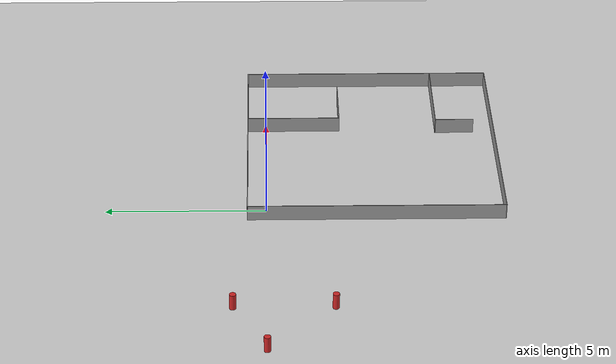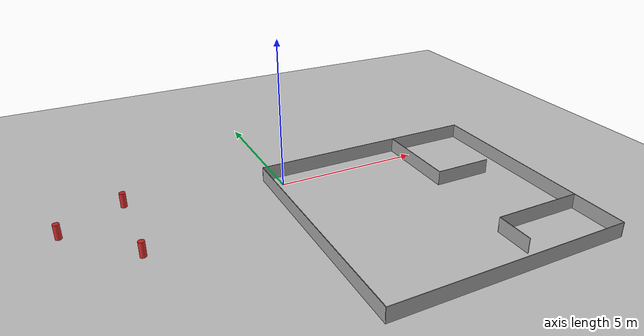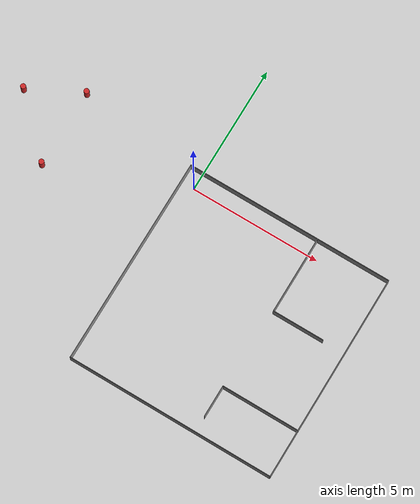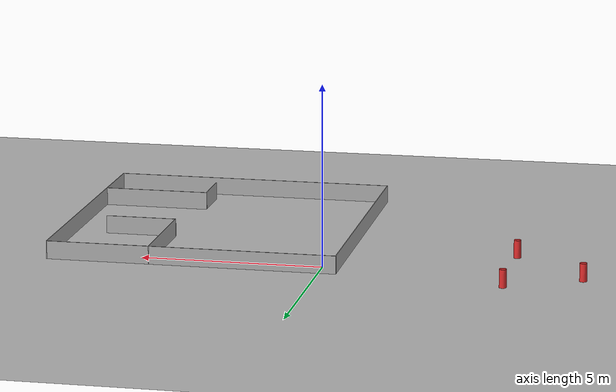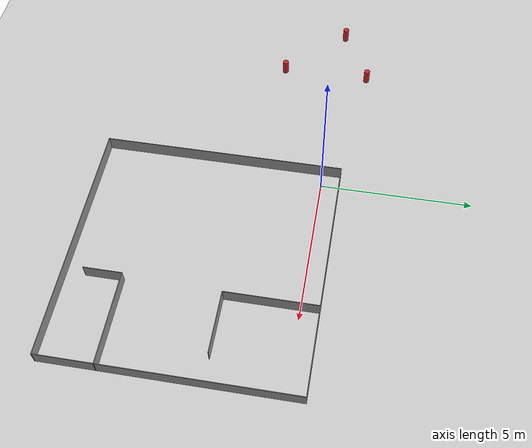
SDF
<sdf version="1.7">
 <world name="default">
  <model name="cylinder_obstacle_3">
   <pose>-7 0 0.25 0 0 0</pose>
   <link name="link">
    <collision name="collision">
     <geometry><cylinder><radius>0.1</radius><length>0.5</length></cylinder></geometry>
    </collision>
    <visual name="visual">
     <geometry><cylinder><radius>0.1</radius><length>0.5</length></cylinder></geometry>
     <material>
      <script><uri>file://media/materials/scripts/gazebo.material</uri><name>Gazebo/Red</name></script>
     </material>
    </visual>
   </link>
   <static>true</static>
  </model>
  <model name="cylinder_obstacle_4">
   <pose>-5 -2 0.25 0 0 0</pose>
   <link name="link">
    <collision name="collision">
     <geometry><cylinder><radius>0.1</radius><length>0.5</length></cylinder></geometry>
    </collision>
    <visual name="visual">
     <geometry><cylinder><radius>0.1</radius><length>0.5</length></cylinder></geometry>
     <material>
      <script><uri>file://media/materials/scripts/gazebo.material</uri><name>Gazebo/Red</name></script>
     </material>
    </visual>
   </link>
   <static>true</static>
  </model>
  <model name="cylinder_obstacle_5">
   <pose>-5 1 0.25 0 0 0</pose>
   <link name="link">
    <collision name="collision">
     <geometry><cylinder><radius>0.1</radius><length>0.5</length></cylinder></geometry>
    </collision>
    <visual name="visual">
     <geometry><cylinder><radius>0.1</radius><length>0.5</length></cylinder></geometry>
     <material>
      <script><uri>file://media/materials/scripts/gazebo.material</uri><name>Gazebo/Red</name></script>
     </material>
    </visual>
   </link>
   <static>true</static>
  </model>
  <light name="sun" type="directional">
   <pose>0 0 10 0 -0 0</pose>
   <diffuse>0.8 0.8 0.8 1</diffuse>
   <specular>0.2 0.2 0.2 1</specular>
   <attenuation>
    <range>1000</range>
    <constant>0.9</constant>
    <linear>0.01</linear>
    <quadratic>0.001</quadratic>
   </attenuation>
   <direction>-0.5 0.1 -0.9</direction>
   <spot><inner_angle>0</inner_angle><outer_angle>0</outer_angle><falloff>0</falloff></spot>
  </light>
  <model name="ground_plane">
   <static>1</static>
   <link name="link">
    <collision name="collision">
     <geometry><plane><normal>0 0 1</normal><size>100 100</size></plane></geometry>
     <surface>
      <contact><collide_bitmask>65535</collide_bitmask></contact>
      <friction><ode><mu>100</mu><mu2>50</mu2></ode></friction>
     </surface>
    </collision>
    <visual name="visual">
     <cast_shadows>0</cast_shadows>
     <geometry><plane><normal>0 0 1</normal><size>100 100</size></plane></geometry>
     <material>
      <script><uri>file://media/materials/scripts/gazebo.material</uri><name>Gazebo/Grey</name></script>
     </material>
    </visual>
   </link>
  </model>
  <gravity>0 0 -9.8</gravity>
  <magnetic_field>6e-06 2.3e-05 -4.2e-05</magnetic_field>
  <atmosphere type="adiabatic"/>
  <physics type="ode">
   <max_step_size>0.001</max_step_size>
   <real_time_factor>1</real_time_factor>
   <real_time_update_rate>1000</real_time_update_rate>
  </physics>
  <scene><ambient>0.4 0.4 0.4 1</ambient><background>0.7 0.7 0.7 1</background><shadows>1</shadows></scene>
  <audio><device>default</device></audio>
  <spherical_coordinates>
   <surface_model>EARTH_WGS84</surface_model>
   <latitude_deg>0</latitude_deg>
   <longitude_deg>0</longitude_deg>
   <elevation>0</elevation>
   <heading_deg>0</heading_deg>
  </spherical_coordinates>
  <model name="arena">
   <pose>3.51688 -4.07862 0 0 0 -1.5708</pose>
   <link name="Wall_0">
    <collision name="Wall_0_Collision">
     <geometry><box><size>8 0.02 0.5</size></box></geometry>
     <pose>0 0 0.25 0 -0 0</pose>
    </collision>
    <visual name="Wall_0_Visual">
     <pose>0 0 0.25 0 -0 0</pose>
     <geometry><box><size>8 0.02 0.5</size></box></geometry>
     <material>
      <script><uri>file://media/materials/scripts/gazebo.material</uri><name>Gazebo/Grey</name></script>
      <ambient>1 1 1 1</ambient>
     </material>
     <meta><layer>0</layer></meta>
    </visual>
    <pose>-4.675 -0 0 0 -0 -1.5708</pose>
   </link>
   <link name="Wall_10">
    <collision name="Wall_10_Collision">
     <geometry><box><size>3 0.02 0.5</size></box></geometry>
     <pose>0 0 0.25 0 -0 0</pose>
    </collision>
    <visual name="Wall_10_Visual">
     <pose>0 0 0.25 0 -0 0</pose>
     <geometry><box><size>3 0.02 0.5</size></box></geometry>
     <material>
      <script><uri>file://media/materials/scripts/gazebo.material</uri><name>Gazebo/Grey</name></script>
      <ambient>1 1 1 1</ambient>
     </material>
     <meta><layer>0</layer></meta>
    </visual>
    <pose>-3.185 1.14 0 0 -0 0</pose>
   </link>
   <link name="Wall_12">
    <collision name="Wall_12_Collision">
     <geometry><box><size>2 0.02 0.5</size></box></geometry>
     <pose>0 0 0.25 0 -0 0</pose>
    </collision>
    <visual name="Wall_12_Visual">
     <pose>0 0 0.25 0 -0 0</pose>
     <geometry><box><size>2 0.02 0.5</size></box></geometry>
     <material>
      <script><uri>file://media/materials/scripts/gazebo.material</uri><name>Gazebo/Grey</name></script>
      <ambient>1 1 1 1</ambient>
     </material>
     <meta><layer>0</layer></meta>
    </visual>
    <pose>-1.695 2.13 0 0 -0 1.5708</pose>
   </link>
   <link name="Wall_15">
    <collision name="Wall_15_Collision">
     <geometry><box><size>3 0.02 0.5</size></box></geometry>
     <pose>0 0 0.25 0 -0 0</pose>
    </collision>
    <visual name="Wall_15_Visual">
     <pose>0 0 0.25 0 -0 0</pose>
     <geometry><box><size>3 0.02 0.5</size></box></geometry>
     <material>
      <script><uri>file://media/materials/scripts/gazebo.material</uri><name>Gazebo/Grey</name></script>
      <ambient>1 1 1 1</ambient>
     </material>
     <meta><layer>0</layer></meta>
    </visual>
    <pose>1.455 2.5 0 0 -0 -1.5708</pose>
   </link>
   <link name="Wall_17">
    <collision name="Wall_17_Collision">
     <geometry><box><size>1.25 0.02 0.5</size></box></geometry>
     <pose>0 0 0.25 0 -0 0</pose>
    </collision>
    <visual name="Wall_17_Visual">
     <pose>0 0 0.25 0 -0 0</pose>
     <geometry><box><size>1.25 0.02 0.5</size></box></geometry>
     <material>
      <script><uri>file://media/materials/scripts/gazebo.material</uri><name>Gazebo/Grey</name></script>
      <ambient>1 1 1 1</ambient>
     </material>
     <meta><layer>0</layer></meta>
    </visual>
    <pose>2.07 1.01 0 0 -0 0</pose>
   </link>
   <link name="Wall_2">
    <collision name="Wall_2_Collision">
     <geometry><box><size>8 0.02 0.5</size></box></geometry>
     <pose>0 0 0.25 0 -0 0</pose>
    </collision>
    <visual name="Wall_2_Visual">
     <pose>0 0 0.25 0 -0 0</pose>
     <geometry><box><size>8 0.02 0.5</size></box></geometry>
     <material>
      <script><uri>file://media/materials/scripts/gazebo.material</uri><name>Gazebo/Grey</name></script>
      <ambient>1 1 1 1</ambient>
     </material>
     <meta><layer>0</layer></meta>
    </visual>
    <pose>-0.685 -3.99 0 0 -0 0</pose>
   </link>
   <link name="Wall_4">
    <collision name="Wall_4_Collision">
     <geometry><box><size>8 0.02 0.5</size></box></geometry>
     <pose>0 0 0.25 0 -0 0</pose>
    </collision>
    <visual name="Wall_4_Visual">
     <pose>0 0 0.25 0 -0 0</pose>
     <geometry><box><size>8 0.02 0.5</size></box></geometry>
     <material>
      <script><uri>file://media/materials/scripts/gazebo.material</uri><name>Gazebo/Grey</name></script>
      <ambient>1 1 1 1</ambient>
     </material>
     <meta><layer>0</layer></meta>
    </visual>
    <pose>3.305 -0 0 0 -0 1.5708</pose>
   </link>
   <link name="Wall_6">
    <collision name="Wall_6_Collision">
     <geometry><box><size>8 0.02 0.5</size></box></geometry>
     <pose>0 0 0.25 0 -0 0</pose>
    </collision>
    <visual name="Wall_6_Visual">
     <pose>0 0 0.25 0 -0 0</pose>
     <geometry><box><size>8 0.02 0.5</size></box></geometry>
     <material>
      <script><uri>file://media/materials/scripts/gazebo.material</uri><name>Gazebo/Grey</name></script>
      <ambient>1 1 1 1</ambient>
     </material>
     <meta><layer>0</layer></meta>
    </visual>
    <pose>-0.685 3.99 0 0 -0 3.14159</pose>
   </link>
   <static>1</static>
  </model>
 </world>
</sdf>
